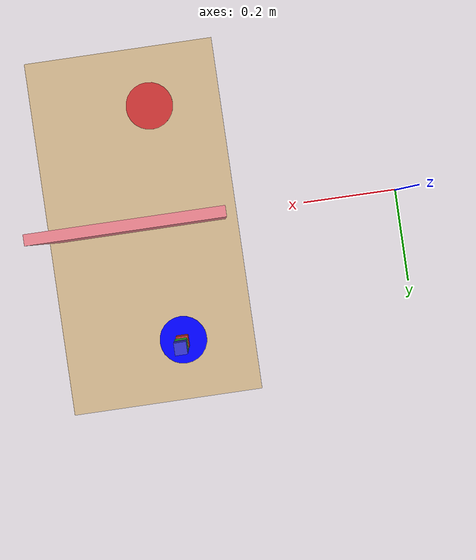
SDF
<sdf version="1.6">
 <world name="pick_and_place_sorting_world">
  <joint name="world_to_panda" type="fixed"><parent>world</parent><child>panda::panda_link0</child></joint>
  <model name="table_source">
   <static>true</static>
   <pose>0.55 0 0.025 0 0 0</pose>
   <link name="table_source_top_link">
    <visual name="visual">
     <geometry><box><size>0.4 0.75 0.05</size></box></geometry>
     <material><diffuse>0.82 0.71 0.55 1.0</diffuse><specular>0.2 0.2 0.2 1.0</specular></material>
    </visual>
    <collision name="collision">
     <geometry><box><size>0.4 0.75 0.05</size></box></geometry>
     <proximity_properties><mu_dynamic>0.3</mu_dynamic><mu_static>0.3</mu_static></proximity_properties>
    </collision>
   </link>
  </model>
  <model name="wall">
   <static>true</static>
   <pose>0.55 0 0.2 0 0 0</pose>
   <link name="wall_top_link">
    <visual name="visual">
     <geometry><box><size>0.35 0.02 0.3</size></box></geometry>
     <material><diffuse>0.92 0.51 0.55 1.0</diffuse><specular>0.2 0.2 0.2 1.0</specular></material>
    </visual>
    <collision name="collision">
     <geometry><box><size>0.35 0.02 0.3</size></box></geometry>
     <proximity_properties><mu_dynamic>0.3</mu_dynamic><mu_static>0.3</mu_static></proximity_properties>
    </collision>
   </link>
  </model>
  <model name="red_cube">
   <pose>0.5 0.25 0.075 0 0 0</pose>
   <link name="red_link">
    <inertial>
     <mass>0.1</mass>
     <inertia><ixx>8.33e-5</ixx><iyy>8.33e-5</iyy><izz>8.33e-5</izz><ixy>0</ixy><ixz>0</ixz><iyz>0</iyz></inertia>
    </inertial>
    <collision name="collision">
     <geometry><box><size>0.025 0.025 0.025</size></box></geometry>
     <proximity_properties><mu_dynamic>0.5</mu_dynamic><mu_static>0.5</mu_static></proximity_properties>
    </collision>
    <visual name="visual">
     <geometry><box><size>0.025 0.025 0.025</size></box></geometry>
     <material><diffuse>0.8 0.2 0.2 1.0</diffuse></material>
    </visual>
   </link>
  </model>
  <model name="green_cube">
   <pose>0.5 0.25 0.125 0 0 0</pose>
   <link name="green_link">
    <inertial>
     <mass>0.1</mass>
     <inertia><ixx>8.33e-5</ixx><iyy>8.33e-5</iyy><izz>8.33e-5</izz><ixy>0</ixy><ixz>0</ixz><iyz>0</iyz></inertia>
    </inertial>
    <collision name="collision">
     <geometry><box><size>0.025 0.025 0.025</size></box></geometry>
     <proximity_properties><mu_dynamic>0.5</mu_dynamic><mu_static>0.5</mu_static></proximity_properties>
    </collision>
    <visual name="visual">
     <geometry><box><size>0.025 0.025 0.025</size></box></geometry>
     <material><diffuse>0.2 0.8 0.2 1.0</diffuse></material>
    </visual>
   </link>
  </model>
  <model name="blue_cube">
   <pose>0.5 0.25 0.155 0 0 0</pose>
   <link name="blue_link">
    <inertial>
     <mass>0.1</mass>
     <inertia><ixx>8.33e-5</ixx><iyy>8.33e-5</iyy><izz>8.33e-5</izz><ixy>0</ixy><ixz>0</ixz><iyz>0</iyz></inertia>
    </inertial>
    <collision name="collision">
     <geometry><box><size>0.025 0.025 0.025</size></box></geometry>
     <proximity_properties><mu_dynamic>0.5</mu_dynamic><mu_static>0.5</mu_static></proximity_properties>
    </collision>
    <visual name="visual">
     <geometry><box><size>0.025 0.025 0.025</size></box></geometry>
     <material><diffuse>0.2 0.2 0.8 1.0</diffuse></material>
    </visual>
   </link>
  </model>
  <model name="cylinder_initial">
   <pose>0.5 0.25 0.05 0 0 0</pose>
   <static>true</static>
   <link name="link">
    <inertial>
     <mass>0.05</mass>
     <inertia><ixx>1.67e-5</ixx><iyy>1.67e-5</iyy><izz>3.33e-5</izz><ixy>0</ixy><ixz>0</ixz><iyz>0</iyz></inertia>
    </inertial>
    <visual name="visual">
     <geometry><cylinder><radius>0.05</radius><length>0.001</length></cylinder></geometry>
     <material><diffuse>0 0 1 1</diffuse></material>
    </visual>
   </link>
  </model>
  <model name="cylinder_target">
   <pose>0.5 -0.25 0.05 0 0 0</pose>
   <static>true</static>
   <link name="link">
    <inertial>
     <mass>0.05</mass>
     <inertia><ixx>1.67e-5</ixx><iyy>1.67e-5</iyy><izz>3.33e-5</izz><ixy>0</ixy><ixz>0</ixz><iyz>0</iyz></inertia>
    </inertial>
    <visual name="visual">
     <geometry><cylinder><radius>0.05</radius><length>0.001</length></cylinder></geometry>
     <material><diffuse>0.8 0.2 0.2 1.0</diffuse></material>
    </visual>
   </link>
  </model>
 </world>
</sdf>
